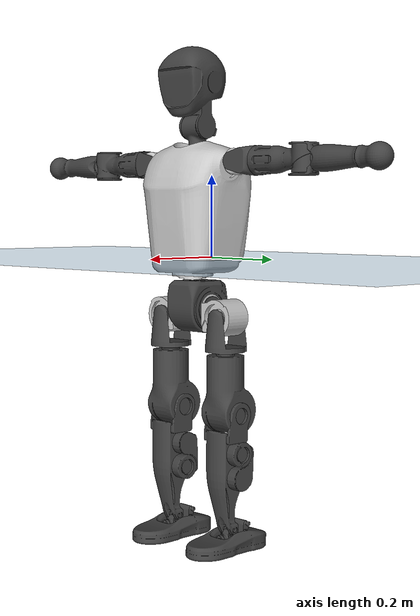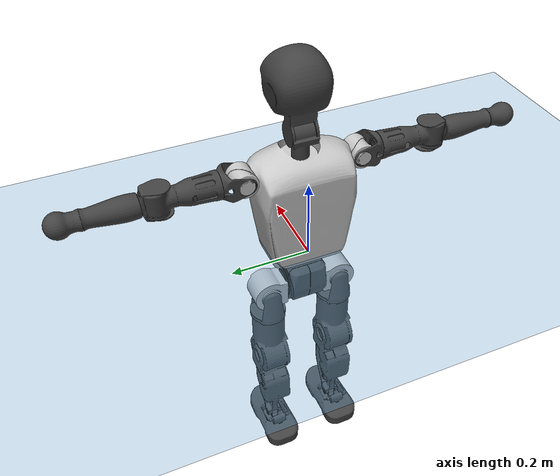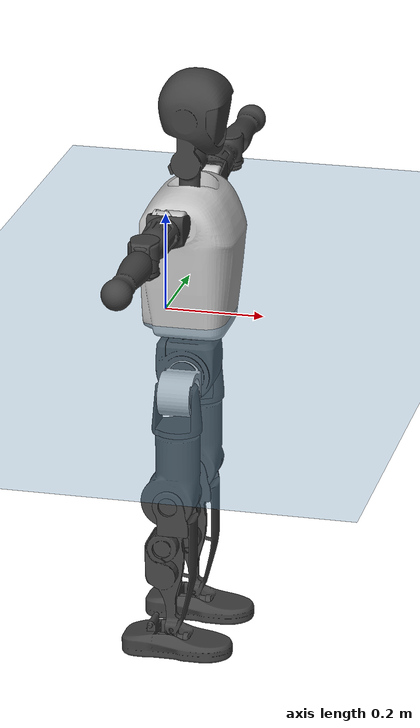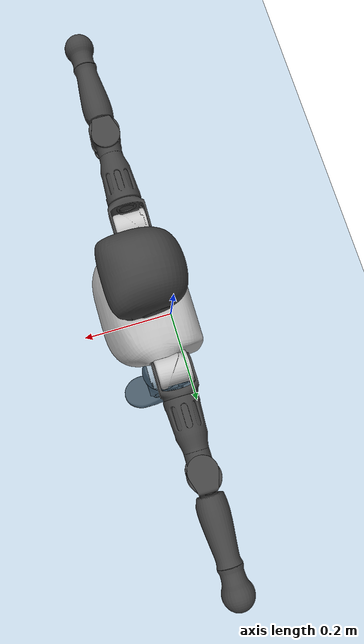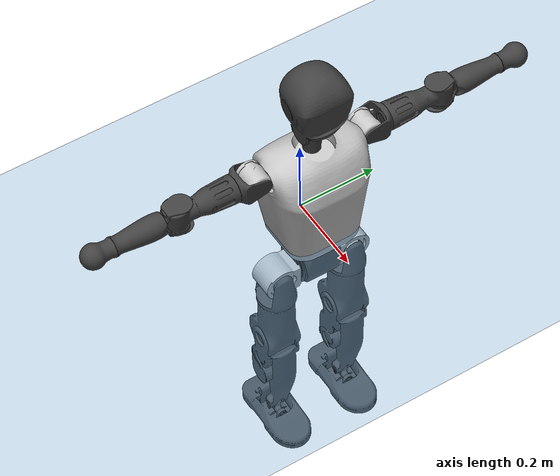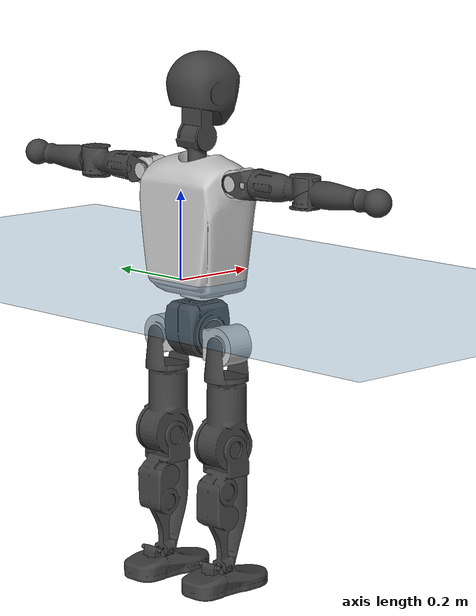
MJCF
<mujoco model="T1">
  <compiler angle="radian" assetdir="assets" balanceinertia="true" inertiafromgeom="false"/>

  <option timestep="0.005" density="1.2" viscosity="2e-05"/>

  <size nkey="1"/>

  <visual>
    <quality shadowsize="8192"/>
    <map shadowclip="0.5"/>
  </visual>

  <default>
    <default class="/">
      <joint armature="0.01" damping="0.01" frictionloss="0.1"/>
      <geom contype="0" conaffinity="0" group="1" solref="-1000 -80"/>
      <site size="0.01 0.005 0.005" group="5"/>
      <general forcelimited="true" biastype="affine" gainprm="25" biasprm="0 -25 -0.6"/>
      <default class="t1">
        <geom rgba="0.25 0.25 0.25 1"/>
        <default class="visual">
          <geom type="mesh" group="2"/>
        </default>
        <default class="collision">
          <geom group="3"/>
        </default>
        <default class="foot">
          <geom size="0.1115 0.05 0.015" type="box" condim="6" group="4" priority="1" solimp="0.015 1 0.015"/>
        </default>
        <default class="reward_collision_sphere">
          <geom group="5" rgba="1 0 0 1"/>
        </default>
      </default>
    </default>
  </default>

  <asset>
    <texture type="skybox" colorspace="auto" name="//unnamed_texture_0" builtin="gradient" rgb1="0.95 0.95 0.95" rgb2="0.95 0.95 0.95" width="100" height="600"/>
    <texture type="2d" colorspace="auto" name="texplane" builtin="checker" rgb1="0.345 0.575 0.748" rgb2="0.345 0.575 0.748" markrgb="1 1 1" width="512" height="512"/>
    <material name="MatPlane" class="/" texture="texplane" texuniform="true" texrepeat="2 2" specular="0.9"/>
    <mesh name="Trunk" class="/" file="Trunk.stl"/>
    <mesh name="H1" class="/" file="H1.stl"/>
    <mesh name="H2" class="/" file="H2.stl"/>
    <mesh name="AL1" class="/" file="AL1.stl"/>
    <mesh name="AL2" class="/" file="AL2.stl"/>
    <mesh name="AL3" class="/" file="AL3.stl"/>
    <mesh name="left_hand_link" class="/" file="left_hand_link.stl"/>
    <mesh name="AR1" class="/" file="AR1.stl"/>
    <mesh name="AR2" class="/" file="AR2.stl"/>
    <mesh name="AR3" class="/" file="AR3.stl"/>
    <mesh name="right_hand_link" class="/" file="right_hand_link.stl"/>
    <mesh name="Waist" class="/" file="Waist.stl"/>
    <mesh name="Hip_Pitch_Left" class="/" file="Hip_Pitch_Left.stl"/>
    <mesh name="Hip_Roll_Left" class="/" file="Hip_Roll_Left.stl"/>
    <mesh name="Hip_Yaw_Left" class="/" file="Hip_Yaw_Left.stl"/>
    <mesh name="Shank_Left" class="/" file="Shank_Left.stl"/>
    <mesh name="Ankle_Cross_Left" class="/" file="Ankle_Cross_Left.stl"/>
    <mesh name="left_foot_link" class="/" file="left_foot_link.stl"/>
    <mesh name="Hip_Pitch_Right" class="/" file="Hip_Pitch_Right.stl"/>
    <mesh name="Hip_Roll_Right" class="/" file="Hip_Roll_Right.stl"/>
    <mesh name="Hip_Yaw_Right" class="/" file="Hip_Yaw_Right.stl"/>
    <mesh name="Shank_Right" class="/" file="Shank_Right.stl"/>
    <mesh name="Ankle_Cross_Right" class="/" file="Ankle_Cross_Right.stl"/>
    <mesh name="right_foot_link" class="/" file="right_foot_link.stl"/>
  </asset>

  <worldbody>
    <geom name="floor" class="/" size="100 100 0.125" type="plane" group="0" material="MatPlane"/>
    <light name="toplight_shadow" class="/" pos="0 0 5" dir="0.0990148 0.0990148 -0.990148" type="directional" ambient="0.04 0.04 0.04" diffuse="0.55 0.55 0.55" specular="0.12 0.12 0.12"/>
    <light name="toplight_fill" class="/" pos="0 0 5" dir="0.0990148 0.0990148 -0.990148" type="directional" castshadow="false" ambient="0.04 0.04 0.04" diffuse="0.3 0.3 0.3" specular="0.08 0.08 0.08"/>
    <body name="trunk" childclass="t1" pos="0.00100226 -0.00118111 0.000407102" quat="1 -0.000156547 -0.000652397 0.000109873">
      <inertial pos="0.0423671 -0.00112098 0.108291" quat="0.999958 -3.39163e-05 -0.00910869 -0.000572871" mass="8.84349" diaginertia="0.0250787 0.0523877 0.0706565"/>
      <joint name="//unnamed_joint_0" type="free" armature="0" damping="0" frictionloss="0"/>
      <geom name="//unnamed_geom_1" class="visual" rgba="0.76 0.76 0.76 1" mesh="Trunk"/>
      <geom name="//unnamed_geom_2" class="collision" size="0.0682936 0.0910581 0.136587" pos="0.0461827 0 0.124732" type="box"/>
      <geom name="//unnamed_geom_3" class="reward_collision_sphere" size="0.104717" pos="0.0461827 0 0.103943"/>
      <geom name="//unnamed_geom_4" class="reward_collision_sphere" size="0.0136587" pos="0.0461827 0.0784209 0"/>
      <geom name="//unnamed_geom_5" class="reward_collision_sphere" size="0.0136587" pos="0.0461827 -0.0784209 0"/>
      <geom name="//unnamed_geom_6" class="reward_collision_sphere" size="0.0136587" pos="0.0461827 0.0987181 0.187098"/>
      <geom name="//unnamed_geom_7" class="reward_collision_sphere" size="0.0136587" pos="0.0461827 -0.0987181 0.187098"/>
      <site name="imu" pos="0.00204311 0.00359007 -0.00308648" size="0.00910581"/>
      <camera name="track" pos="0 -1.8452 0" quat="0.707107 0.707107 0 0" mode="trackcom"/>
      <camera name="ego_camera" pos="0.0939047 0 0.436562" quat="-0.5 -0.5 0.5 0.5"/>
      <body name="H1" pos="0.0485941 0.00098258 0.252105" quat="1 1.5081e-06 4.76806e-06 -7.13953e-06">
        <inertial pos="-0.00208285 -0.00245804 0.0601172" quat="0.764874 -0.0236509 -0.000681079 0.643745" mass="0.33745" diaginertia="6.6139e-05 0.00015053 0.000183157"/>
        <joint name="AAHead_yaw" pos="0 0 0" axis="0.0010601 7.43896e-05 0.999999" range="-1.5516 1.55635" armature="0.0087454" damping="0.0122391" frictionloss="0.100921"/>
        <geom name="//unnamed_geom_8" class="visual" mesh="H1"/>
        <body name="H2" pos="-0.00122292 -0.000182659 0.0640862" quat="1 1.38579e-05 1.63426e-05 1.83846e-05">
          <inertial pos="0.00520579 0.000829117 0.102587" quat="0.988465 0.106464 -0.070658 -0.0813012" mass="0.466529" diaginertia="0.00054777 0.00125246 0.00210518"/>
          <joint name="Head_pitch" pos="0 0 0" axis="0.000813658 -0.999998 0.00199113" stiffness="9.42948e-05" range="-1.23153 0.361097" armature="0.00827995" damping="0.00548749" frictionloss="0.0939534"/>
          <geom name="//unnamed_geom_9" class="visual" mesh="H2"/>
          <geom name="//unnamed_geom_10" class="collision" size="0.0728465" pos="0.00769711 0 0.114338"/>
          <geom name="//unnamed_geom_11" class="reward_collision_sphere" size="0.0819523" pos="0.0153942 0 0.103943"/>
        </body>
      </body>
      <body name="AL1" pos="0.0448312 0.0982806 0.228457" quat="1 -2.07909e-05 0.000490322 9.89547e-06">
        <inertial pos="-0.000110044 0.0410745 -3.42349e-06" quat="0.506877 0.501862 -0.50289 0.488171" mass="0.401049" diaginertia="0.000368686 0.000858174 0.000360805"/>
        <joint name="Left_Shoulder_Pitch" pos="0 0 0" axis="-0.00084186 0.999999 0.00103139" range="-3.3037 1.20091" armature="0.00916355" damping="0.00682464" frictionloss="0.0899033"/>
        <geom name="//unnamed_geom_12" class="visual" rgba="0.76 0.76 0.76 1" mesh="AL1"/>
        <body name="AL2" pos="0.000471626 0.0438682 0.000903632" quat="1 0.000200605 -6.27986e-05 -0.000106594">
          <inertial pos="0.00306432 0.0353488 -0.000342199" quat="0.48712 0.51265 -0.487292 0.5123" mass="0.121819" diaginertia="0.000109557 0.000232318 0.000215443"/>
          <joint name="Left_Shoulder_Roll" pos="0 0 0" axis="-0.999998 0.00201559 -0.000839259" stiffness="0.00309789" range="-1.55255 1.73283" armature="0.00911938" damping="0.00374939" frictionloss="0.0887032"/>
          <geom name="//unnamed_geom_13" class="visual" mesh="AL2"/>
          <body name="AL3" pos="0.00176814 0.0560011 -2.07461e-07" quat="1 0.000102721 0.000313421 -0.000164352">
            <inertial pos="-0.00220983 0.0790889 -0.000438739" quat="0.706692 0.70752 0.000725797 0.000387024" mass="0.774138" diaginertia="0.00344936 0.00840014 0.000758948"/>
            <joint name="Left_Elbow_Pitch" pos="0 0 0" axis="0.000669012 -0.999999 -0.00140445" range="-2.26852 2.27059" armature="0.00920902" damping="0.00837563" frictionloss="0.09089"/>
            <geom name="//unnamed_geom_14" class="visual" mesh="AL3"/>
            <geom name="//unnamed_geom_15" class="collision" size="0.0273174 0.0682936" pos="0 0.04613 0" quat="0.707105 0.707108 0 0" type="cylinder"/>
            <geom name="//unnamed_geom_16" class="reward_collision_sphere" size="0.0327809"/>
            <body name="left_hand_link" pos="0.00112098 0.13629 -0.00107467" quat="1 -0.00035707 -0.000419327 0.000447312">
              <inertial pos="0.000187383 0.101233 0.000436355" quat="0.70921 0.704992 -0.00256697 -0.000581393" mass="0.244381" diaginertia="0.00218511 0.00531142 0.000251547"/>
              <joint name="Left_Elbow_Yaw" pos="0 0 0" axis="0.00373116 -0.00324289 0.999988" range="-2.45036 0.0221232" armature="0.00886833" damping="0.0133748" frictionloss="0.0922299"/>
              <geom name="//unnamed_geom_17" class="visual" mesh="left_hand_link"/>
              <geom name="//unnamed_geom_18" class="collision" size="0.0273174 0.0796758" pos="0 0.119938 0" quat="0.707105 0.707108 0 0" type="cylinder"/>
              <geom name="//unnamed_geom_19" class="reward_collision_sphere" size="0.0455291"/>
              <geom name="//unnamed_geom_20" class="reward_collision_sphere" size="0.0318703" pos="0 0.101486 0"/>
              <geom name="//unnamed_geom_21" class="reward_collision_sphere" size="0.0318703" pos="0 0.198359 0"/>
            </body>
          </body>
        </body>
      </body>
      <body name="AR1" pos="0.0431673 -0.0988284 0.228411" quat="1 -2.70147e-05 0.000246385 -3.32329e-05">
        <inertial pos="-0.00100288 -0.0429027 0.00177767" quat="0.502909 0.496603 -0.504611 0.495817" mass="0.403484" diaginertia="0.000372932 0.000851602 0.000357749"/>
        <joint name="Right_Shoulder_Pitch" pos="0 0 0" axis="-0.00131098 -0.999976 -0.00684472" range="-1.21274 3.30112" armature="0.00865944" damping="0.00676145" frictionloss="0.0939334"/>
        <geom name="//unnamed_geom_22" class="visual" rgba="0.76 0.76 0.76 1" mesh="AR1"/>
        <body name="AR2" pos="-0.000430149 -0.0417662 0.000507695" quat="1 -0.000131118 0.000248571 0.000271201">
          <inertial pos="0.00329847 -0.035336 0.000974433" quat="0.514411 0.485579 -0.511088 0.488245" mass="0.124105" diaginertia="0.000111348 0.000236824 0.000214184"/>
          <joint name="Right_Shoulder_Roll" pos="0 0 0" axis="-0.999989 -0.0043171 -0.0019033" stiffness="0.00180885" range="-1.74558 1.57132" armature="0.00839014" damping="0.00605418" frictionloss="0.0893345"/>
          <geom name="//unnamed_geom_23" class="visual" mesh="AR2"/>
          <body name="AR3" pos="-0.000754399 -0.0570722 0.00105055" quat="1 0.000303861 -8.38128e-05 -0.000230818">
            <inertial pos="0.00172171 -0.0783791 0.00137998" quat="0.707911 0.706302 0.000264407 -2.80981e-05" mass="0.768348" diaginertia="0.00339802 0.00853314 0.000761614"/>
            <joint name="Right_Elbow_Pitch" pos="0 0 0" axis="0.000553857 1 8.81404e-05" range="-2.26866 2.27629" armature="0.00923075" damping="0.00724688" frictionloss="0.100918"/>
            <geom name="//unnamed_geom_24" class="visual" mesh="AR3"/>
            <geom name="//unnamed_geom_25" class="collision" size="0.0273174 0.0682936" pos="0 -0.04613 0" quat="0.707105 0.707108 0 0" type="cylinder"/>
            <geom name="//unnamed_geom_26" class="reward_collision_sphere" size="0.0327809"/>
            <body name="right_hand_link" pos="-0.000371644 -0.135368 -0.000924595" quat="1 3.95124e-05 3.02438e-06 -4.47549e-06">
              <inertial pos="-0.000319382 -0.101801 0.000727959" quat="0.706498 0.707713 0.00152132 -3.13177e-05" mass="0.250679" diaginertia="0.0022597 0.00556086 0.000270138"/>
              <joint name="Right_Elbow_Yaw" pos="0 0 0" axis="-0.00453749 0.00560086 0.999974" range="0.0151744 2.43497" armature="0.00953486" damping="0.00895069" frictionloss="0.0884828"/>
              <geom name="//unnamed_geom_27" class="visual" mesh="right_hand_link"/>
              <geom name="//unnamed_geom_28" class="collision" size="0.0273174 0.0796758" pos="0 -0.119938 0" quat="0.707105 0.707108 0 0" type="cylinder"/>
              <geom name="//unnamed_geom_29" class="reward_collision_sphere" size="0.0455291"/>
              <geom name="//unnamed_geom_30" class="reward_collision_sphere" size="0.0318703" pos="0 -0.101486 0"/>
              <geom name="//unnamed_geom_31" class="reward_collision_sphere" size="0.0318703" pos="0 -0.198359 0"/>
            </body>
          </body>
        </body>
      </body>
      <body name="Waist" pos="0.047002 4.01357e-05 -0.120701" quat="0.999999 0.000438805 -0.000449141 0.000958731">
        <inertial pos="-0.000142693 -0.000238902 0.0077523" quat="0.98204 0.00368384 -0.188609 0.00323761" mass="1.93113" diaginertia="0.0014596 0.00361319 0.00584311"/>
        <joint name="Waist" pos="0 0 0" axis="-0.000284819 -0.0011484 0.999999" range="-1.56908 1.56178" armature="0.00909649" damping="0.00957757" frictionloss="0.0906198"/>
        <geom name="//unnamed_geom_32" class="visual" mesh="Waist"/>
        <body name="Hip_Pitch_Left" pos="0.00140831 0.0967419 0.00120701" quat="1 -5.62302e-05 -1.01123e-05 3.79386e-05">
          <inertial pos="0.00239185 -0.00667733 -0.0188027" quat="0.975912 0.217979 0.00897919 -0.00072928" mass="0.771327" diaginertia="0.000476191 0.000977598 0.00152622"/>
          <joint name="Left_Hip_Pitch" pos="0 0 0" axis="-0.00131196 0.999999 -0.000664641" stiffness="0.0032672" range="-1.81836 1.57533" armature="0.00884987" damping="0.00885083" frictionloss="0.0918195"/>
          <geom name="//unnamed_geom_33" class="visual" rgba="0.76 0.76 0.76 1" mesh="Hip_Pitch_Left"/>
          <body name="Hip_Roll_Left" pos="-0.000642902 0.000544207 -0.0241634" quat="1 3.66318e-05 8.28246e-05 -7.99307e-05">
            <inertial pos="0.00100126 -0.00198758 -0.054979" quat="0.707079 -0.00596627 -0.00598281 0.707084" mass="0.289455" diaginertia="0.000461467 0.000986961 0.000639084"/>
            <joint name="Left_Hip_Roll" pos="0 0 0" axis="-0.999983 -0.00578484 0.000909242" range="-1.56704 0.188432" armature="0.00897468" damping="0.000282575" frictionloss="0.0936362"/>
            <geom name="//unnamed_geom_34" class="visual" mesh="Hip_Roll_Left"/>
            <geom name="//unnamed_geom_35" class="reward_collision_sphere" size="0.050082"/>
            <body name="Hip_Yaw_Left" pos="-0.000723172 8.87211e-05 -0.0857129" quat="1 0.000148865 -3.94438e-05 1.57053e-05">
              <inertial pos="-0.00501502 -0.000918474 -0.0932176" quat="0.699389 -0.0309786 -0.0318136 0.713361" mass="1.64272" diaginertia="0.00694274 0.0165031 0.00307931"/>
              <joint name="Left_Hip_Yaw" pos="0 0 0" axis="-0.000547268 0.000718966 -1" range="-1.04592 0.997965" armature="0.00911029" damping="0.00672944" frictionloss="0.0913728"/>
              <geom name="//unnamed_geom_36" class="visual" mesh="Hip_Yaw_Left"/>
              <geom name="//unnamed_geom_37" class="collision" size="0.0455291 0.0728465" type="cylinder"/>
              <body name="Shank_Left" pos="-0.0119118 6.36543e-05 -0.142647" quat="1 -2.21348e-05 -4.86084e-05 -6.16325e-05">
                <inertial pos="-0.00510904 -9.5885e-07 -0.129075" quat="0.997695 0.000632456 -0.024685 0.0632128" mass="1.30759" diaginertia="0.00934633 0.0224475 0.00222755"/>
                <joint name="Left_Knee_Pitch" pos="0 0 0" axis="-0.00300041 0.99998 -0.00556627" range="-0.00409414 2.34393" armature="0.00917348" damping="0.00627018" frictionloss="0.090148"/>
                <geom name="//unnamed_geom_38" class="visual" mesh="Shank_Left"/>
                <geom name="//unnamed_geom_39" class="collision" size="0.0455291 0.0682936" pos="0 0 -0.124732" type="cylinder"/>
                <geom name="//unnamed_geom_40" class="reward_collision_sphere" size="0.0591878"/>
                <body name="Ankle_Cross_Left" pos="0.000833075 -0.000377367 -0.290059" quat="1 6.89175e-05 5.73337e-05 0.000376247">
                  <inertial pos="-0.00490585 -1.6895e-05 -0.00898752" quat="0.443372 0.550845 0.550894 0.443292" mass="0.055405" diaginertia="7.87794e-06 1.71475e-05 1.35798e-05"/>
                  <joint name="Left_Ankle_Pitch" pos="0 0 0" axis="0.00128692 0.999998 -0.00157856" range="-0.870032 0.352015" armature="0.0100411" damping="0.0148782" frictionloss="0.0918441"/>
                  <geom name="//unnamed_geom_41" class="visual" mesh="Ankle_Cross_Left"/>
                  <body name="left_foot_link" pos="0.000303626 -0.000613221 -0.0117662" quat="0.999999 -0.000612528 5.43103e-05 -0.000856945">
                    <inertial pos="-0.000680112 0.000714461 -0.0097349" quat="-0.00754455 0.620017 -0.000651763 0.784552" mass="0.528901" diaginertia="0.00075401 0.0016066 0.00269115"/>
                    <joint name="Left_Ankle_Roll" pos="0 0 0" axis="-0.999919 -0.00628052 -0.0110655" range="-0.455042 0.43836" armature="0.00924071" damping="0.00349643" frictionloss="0.0929551"/>
                    <geom name="//unnamed_geom_42" class="visual" mesh="left_foot_link"/>
                    <geom name="left_foot" class="foot" size="0.106647 0.0439276 0.0138235" pos="0.00769711 0 -0.0155915"/>
                    <geom name="//unnamed_geom_44" class="reward_collision_sphere" size="0.0473502" pos="0.00769711 0 -0.0155915"/>
                    <geom name="//unnamed_geom_45" class="reward_collision_sphere" size="0.0273174" pos="0.0731225 -0.0212198 -0.0155915"/>
                    <geom name="//unnamed_geom_46" class="reward_collision_sphere" size="0.0273174" pos="-0.0538798 -0.0212198 -0.0155915"/>
                    <site name="left_foot" class="foot" pos="0.00769711 0 -0.0155915" size="0.00910581"/>
                  </body>
                </body>
              </body>
            </body>
          </body>
        </body>
        <body name="Hip_Pitch_Right" pos="0.00158797 -0.0971974 -0.00095356" quat="1 1.95164e-05 4.05988e-05 4.65536e-05">
          <inertial pos="-0.00142874 0.00562242 -0.0177618" quat="0.973994 -0.226047 0.0153815 -0.00166097" mass="0.768199" diaginertia="0.000490913 0.000985542 0.00149729"/>
          <joint name="Right_Hip_Pitch" pos="0 0 0" axis="0.000806551 -1 0.000354429" range="-1.56293 1.80145" armature="0.00955766" damping="0" frictionloss="0.0865179"/>
          <geom name="//unnamed_geom_47" class="visual" rgba="0.76 0.76 0.76 1" mesh="Hip_Pitch_Right"/>
          <body name="Hip_Roll_Right" pos="-0.00104023 0.000601454 -0.02193" quat="1 1.41591e-05 -2.22296e-05 1.05353e-05">
            <inertial pos="0.00106691 -0.00104995 -0.055504" quat="0.70569 -0.011276 -0.00654332 0.708401" mass="0.285803" diaginertia="0.00047952 0.00101977 0.000621838"/>
            <joint name="Right_Hip_Roll" pos="0 0 0" axis="-0.999992 0.00190316 0.00337955" range="-0.206431 1.57049" armature="0.00904262" damping="0.00375653" frictionloss="0.0914712"/>
            <geom name="//unnamed_geom_48" class="visual" mesh="Hip_Roll_Right"/>
            <geom name="//unnamed_geom_49" class="reward_collision_sphere" size="0.050082"/>
            <body name="Hip_Yaw_Right" pos="-0.00130876 -9.08319e-05 -0.0864207" quat="1 -9.28487e-05 2.77914e-05 -0.000251171">
              <inertial pos="-0.00563609 -5.9007e-06 -0.0931767" quat="0.713932 -0.0320243 -0.0343208 0.69864" mass="1.62345" diaginertia="0.00708381 0.0169463 0.00320797"/>
              <joint name="Right_Hip_Yaw" pos="0 0 0" axis="0.000714575 -0.00153382 -0.999999" stiffness="0.00404433" range="-0.996725 1.0106" armature="0.00922587" damping="0.0190668" frictionloss="0.0954023"/>
              <geom name="//unnamed_geom_50" class="visual" mesh="Hip_Yaw_Right"/>
              <geom name="//unnamed_geom_51" class="collision" size="0.0455291 0.0728465" type="cylinder"/>
              <body name="Shank_Right" pos="-0.0116532 0.000169723 -0.141021" quat="1 -5.19722e-06 -0.000363684 -4.10551e-05">
                <inertial pos="-0.00510299 -0.00112977 -0.127771" quat="0.999271 -0.00261316 -0.023615 -0.0298925" mass="1.37127" diaginertia="0.00961826 0.0233775 0.00234288"/>
                <joint name="Right_Knee_Pitch" pos="0 0 0" axis="0.00120552 -0.999986 -0.00520318" range="-2.37061 -0.00766411" armature="0.00934463" damping="0.00481445" frictionloss="0.0893292"/>
                <geom name="//unnamed_geom_52" class="visual" mesh="Shank_Right"/>
                <geom name="//unnamed_geom_53" class="collision" size="0.0455291 0.0682936" pos="0 0 -0.124732" type="cylinder"/>
                <geom name="//unnamed_geom_54" class="reward_collision_sphere" size="0.0591878"/>
                <body name="Ankle_Cross_Right" pos="0.00084405 -0.00123629 -0.29171" quat="1 4.76757e-07 2.01203e-06 -2.24098e-05">
                  <inertial pos="-0.00293456 -0.000354485 -0.00835714" quat="0.44314 0.551029 0.551026 0.443131" mass="0.0553634" diaginertia="7.98325e-06 1.71962e-05 1.40195e-05"/>
                  <joint name="Right_Ankle_Pitch" pos="0 0 0" axis="0.00502662 -0.999986 0.00191235" range="-0.355365 0.859037" armature="0.00910377" damping="0.0044382" frictionloss="0.0916604"/>
                  <geom name="//unnamed_geom_55" class="visual" mesh="Ankle_Cross_Right"/>
                  <body name="right_foot_link" pos="-0.000344182 -1.26498e-05 -0.0100999" quat="1 5.71448e-05 -3.75353e-05 -6.74016e-05">
                    <inertial pos="-5.9025e-05 0.000955265 -0.0115405" quat="0.0011699 0.620338 -0.00553102 0.784314" mass="0.508721" diaginertia="0.000713481 0.00155336 0.00251936"/>
                    <joint name="Right_Ankle_Roll" pos="0 0 0" axis="-0.999987 0.00104545 -0.00502931" stiffness="7.62143e-05" range="-0.455105 0.473895" armature="0.00804815" damping="0" frictionloss="0.0920826"/>
                    <geom name="//unnamed_geom_56" class="visual" mesh="right_foot_link"/>
                    <geom name="right_foot" class="foot" size="0.097428 0.0444187 0.0142028" pos="0.00769711 0 -0.0155915"/>
                    <geom name="//unnamed_geom_58" class="reward_collision_sphere" size="0.0364232"/>
                    <geom name="//unnamed_geom_59" class="reward_collision_sphere" size="0.0273174" pos="0.00769711 0 -0.0155915"/>
                    <geom name="//unnamed_geom_60" class="reward_collision_sphere" size="0.0273174" pos="0.0731225 0.0212198 -0.0155915"/>
                    <geom name="//unnamed_geom_61" class="reward_collision_sphere" size="0.0273174" pos="-0.0538798 0.0212198 -0.0155915"/>
                    <site name="right_foot" class="foot" pos="0.00769711 0 -0.0155915" size="0.00910581"/>
                  </body>
                </body>
              </body>
            </body>
          </body>
        </body>
      </body>
    </body>
  </worldbody>

  <contact>
    <pair class="/" geom1="floor" geom2="left_foot" name="//unnamed_contact_0"/>
    <pair class="/" geom1="floor" geom2="right_foot" name="//unnamed_contact_1"/>
  </contact>

  <actuator>
    <general name="AAHead_yaw" class="/" joint="AAHead_yaw" forcerange="-6.36332 6.36332" gainprm="23.286" biasprm="0 -23.286 -0.526132"/>
    <general name="Head_pitch" class="/" joint="Head_pitch" forcerange="-6.32305 6.32305" gainprm="23.286" biasprm="0 -23.286 -0.526132"/>
    <general name="Left_Shoulder_Pitch" class="/" joint="Left_Shoulder_Pitch" forcerange="-14.9929 14.9929" gainprm="23.286" biasprm="0 -23.286 -0.526132"/>
    <general name="Left_Shoulder_Roll" class="/" joint="Left_Shoulder_Roll" forcerange="-15.481 15.481" gainprm="23.286" biasprm="0 -23.286 -0.526132"/>
    <general name="Left_Elbow_Pitch" class="/" joint="Left_Elbow_Pitch" forcerange="-16.4294 16.4294" gainprm="23.286" biasprm="0 -23.286 -0.526132"/>
    <general name="Left_Elbow_Yaw" class="/" joint="Left_Elbow_Yaw" forcerange="-16.6303 16.6303" gainprm="23.286" biasprm="0 -23.286 -0.526132"/>
    <general name="Right_Shoulder_Pitch" class="/" joint="Right_Shoulder_Pitch" forcerange="-16.5126 16.5126" gainprm="23.286" biasprm="0 -23.286 -0.526132"/>
    <general name="Right_Shoulder_Roll" class="/" joint="Right_Shoulder_Roll" forcerange="-16.5541 16.5541" gainprm="23.286" biasprm="0 -23.286 -0.526132"/>
    <general name="Right_Elbow_Pitch" class="/" joint="Right_Elbow_Pitch" forcerange="-16.4117 16.4117" gainprm="23.286" biasprm="0 -23.286 -0.526132"/>
    <general name="Right_Elbow_Yaw" class="/" joint="Right_Elbow_Yaw" forcerange="-16.7587 16.7587" gainprm="23.286" biasprm="0 -23.286 -0.526132"/>
    <general name="Waist" class="/" joint="Waist" forcerange="-26.5724 26.5724" gainprm="23.286" biasprm="0 -23.286 -0.526132"/>
    <general name="Left_Hip_Pitch" class="/" joint="Left_Hip_Pitch" forcerange="-41.6673 41.6673" gainprm="23.286" biasprm="0 -23.286 -0.526132"/>
    <general name="Left_Hip_Roll" class="/" joint="Left_Hip_Roll" forcerange="-26.2801 26.2801" gainprm="23.286" biasprm="0 -23.286 -0.526132"/>
    <general name="Left_Hip_Yaw" class="/" joint="Left_Hip_Yaw" forcerange="-27.8734 27.8734" gainprm="23.286" biasprm="0 -23.286 -0.526132"/>
    <general name="Left_Knee_Pitch" class="/" joint="Left_Knee_Pitch" forcerange="-55.1154 55.1154" gainprm="23.286" biasprm="0 -23.286 -0.526132"/>
    <general name="Left_Ankle_Pitch" class="/" joint="Left_Ankle_Pitch" forcerange="-18.1477 18.1477" gainprm="23.286" biasprm="0 -23.286 -0.526132"/>
    <general name="Left_Ankle_Roll" class="/" joint="Left_Ankle_Roll" forcerange="-13.1986 13.1986" gainprm="23.286" biasprm="0 -23.286 -0.526132"/>
    <general name="Right_Hip_Pitch" class="/" joint="Right_Hip_Pitch" forcerange="-43.1232 43.1232" gainprm="23.286" biasprm="0 -23.286 -0.526132"/>
    <general name="Right_Hip_Roll" class="/" joint="Right_Hip_Roll" forcerange="-29.3966 29.3966" gainprm="23.286" biasprm="0 -23.286 -0.526132"/>
    <general name="Right_Hip_Yaw" class="/" joint="Right_Hip_Yaw" forcerange="-27.4391 27.4391" gainprm="23.286" biasprm="0 -23.286 -0.526132"/>
    <general name="Right_Knee_Pitch" class="/" joint="Right_Knee_Pitch" forcerange="-53.0991 53.0991" gainprm="23.286" biasprm="0 -23.286 -0.526132"/>
    <general name="Right_Ankle_Pitch" class="/" joint="Right_Ankle_Pitch" forcerange="-16.8629 16.8629" gainprm="23.286" biasprm="0 -23.286 -0.526132"/>
    <general name="Right_Ankle_Roll" class="/" joint="Right_Ankle_Roll" forcerange="-14.062 14.062" gainprm="23.286" biasprm="0 -23.286 -0.526132"/>
  </actuator>

  <sensor>
    <gyro site="imu" name="imu_angular_velocity"/>
    <velocimeter site="imu" name="imu_linear_velocity"/>
    <framelinvel objtype="site" objname="left_foot" name="left_foot_global_linear_velocity"/>
    <framelinvel objtype="site" objname="right_foot" name="right_foot_global_linear_velocity"/>
  </sensor>

  <keyframe>
    <key name="home" qpos="0 0 0.6385 1 0 0 0 0 0 0 1.4 0 -0.4 0 -1.4 0 0.4 0 -0.4 0 0 0.8 -0.4 0 0.4 0 0 -0.8 0.4 0"/>
  </keyframe>
</mujoco>
